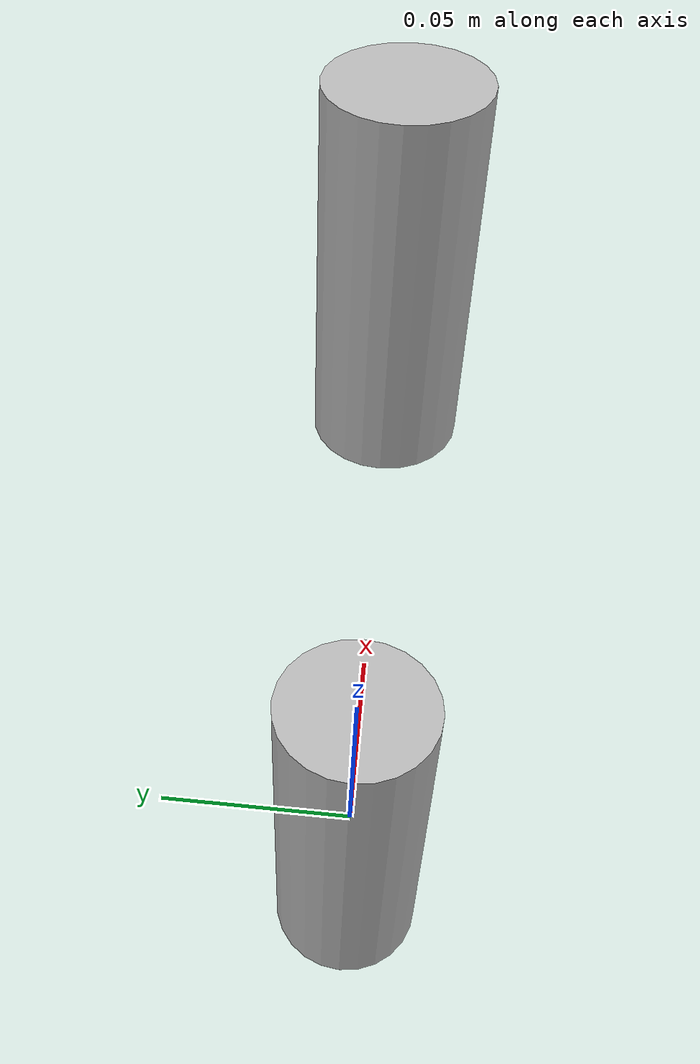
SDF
<?xml version='1.0'?>
<sdf version='1.5'>

<world name="two_link_world">

<model name="two_links_orthogonal_1">
    <link name="linkA">
        <pose>0 0 0 0 0 0</pose>
        <geometry>
            <cylinder>
            <length> 0.1 </length>
            <radius> 0.02 </radius>
            </cylinder>
        </geometry>
        <visual name="vizLinkA">
            <geometry>
                <cylinder>
                <length> 0.1 </length>
                <radius> 0.02 </radius>
                </cylinder>
            </geometry>
        </visual>
    </link>

    <link name="linkB">
        <pose>0.1 0 0.1 0 0 0</pose>
        <geometry>
            <cylinder>
            <length> 0.1 </length>
            <radius> 0.02 </radius>
            </cylinder>
        </geometry>
        <visual name="vizLinkB">
            <geometry>
                <cylinder>
                <length> 0.1 </length>
                <radius> 0.02 </radius>
                </cylinder>
            </geometry>
        </visual>
    </link>

    <joint name="jointAB" type="revolute">
        <pose>0 0 -0.1 0 0 0</pose>
        <parent> linkA </parent>
        <child> linkB </child>
        <axis> <xyz> 0 1 0 </xyz> </axis>
    </joint>

    <joint name="joint_world" type="fixed">
        <parent> world </parent>
        <child> linkA </child>
    </joint>
</model>

</world>
</sdf>
